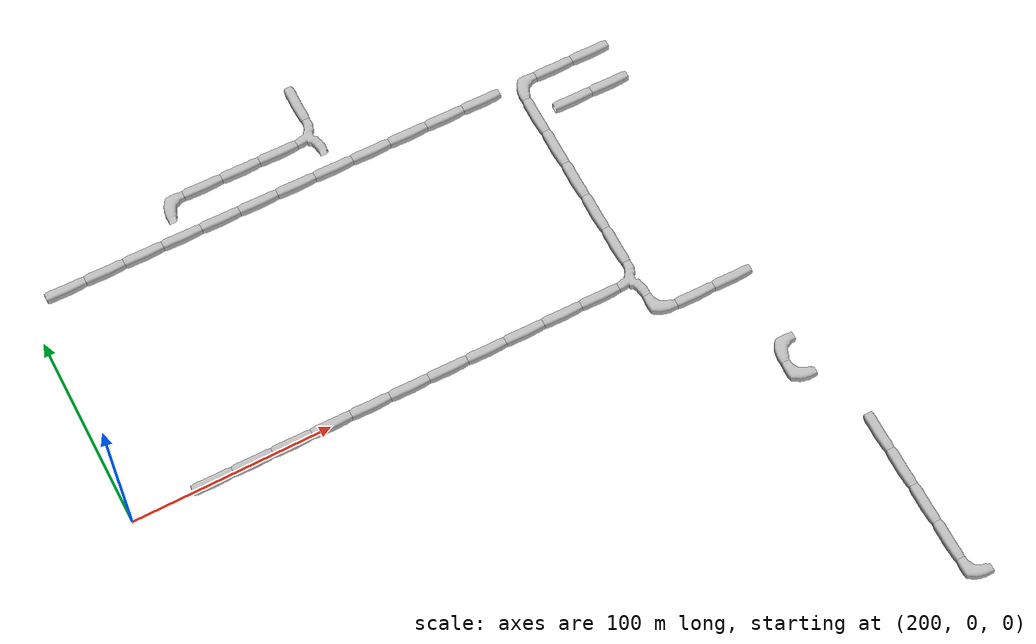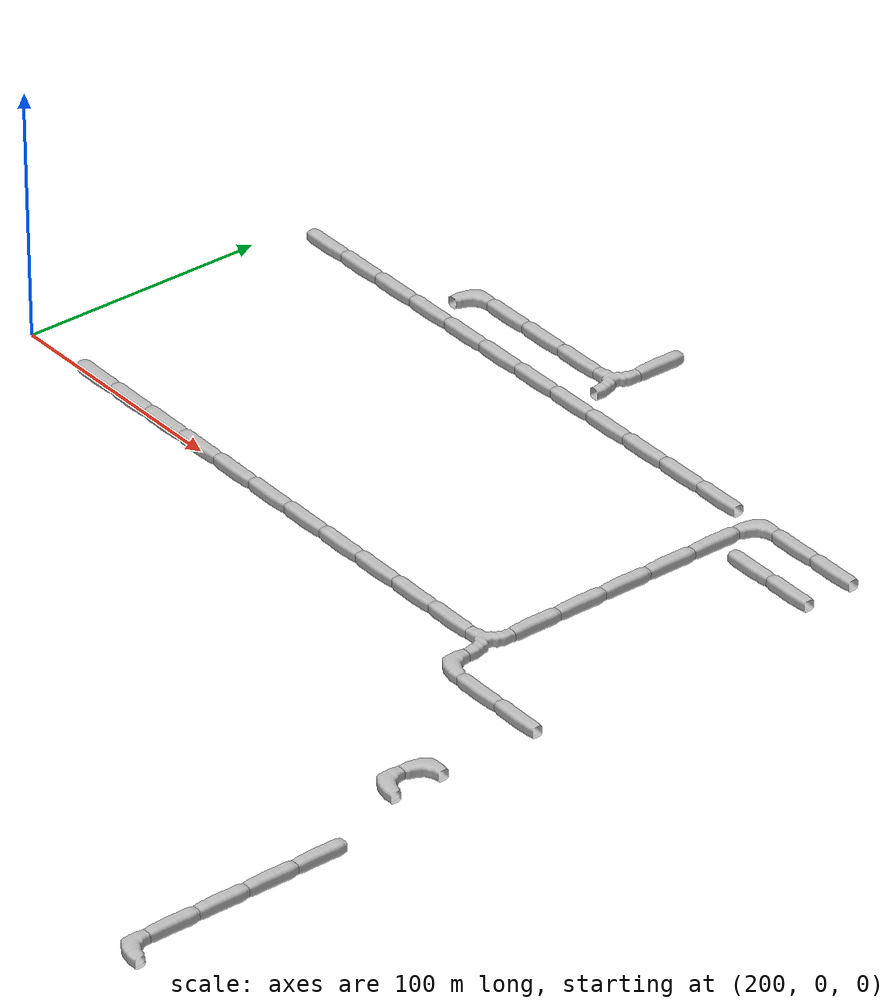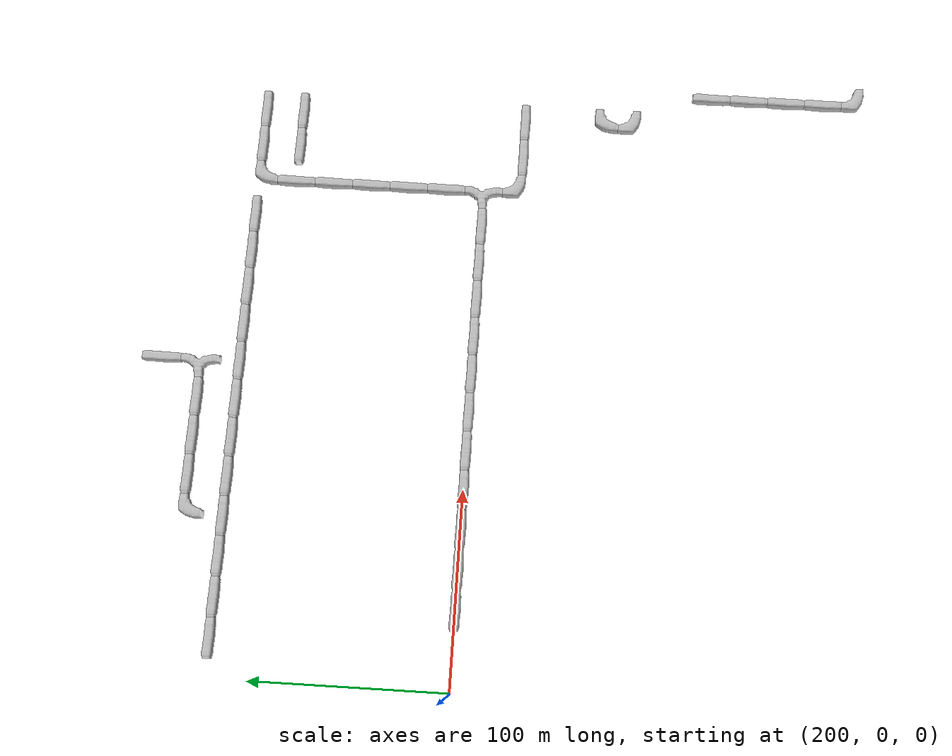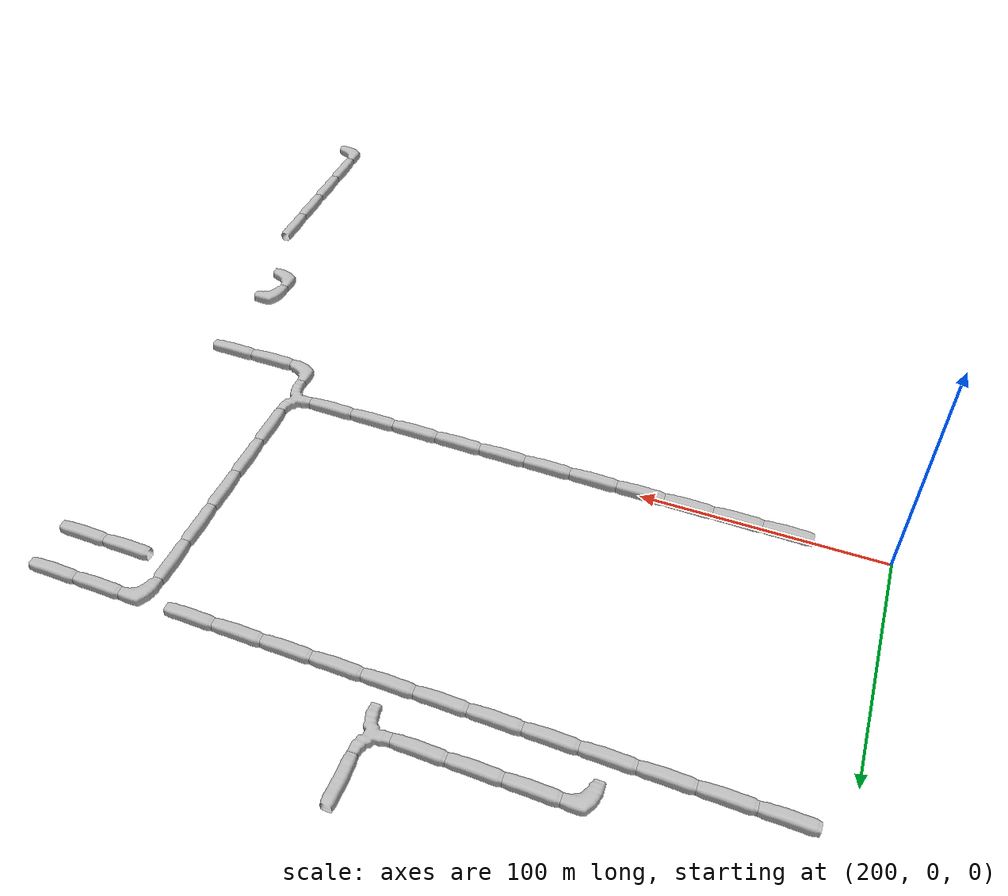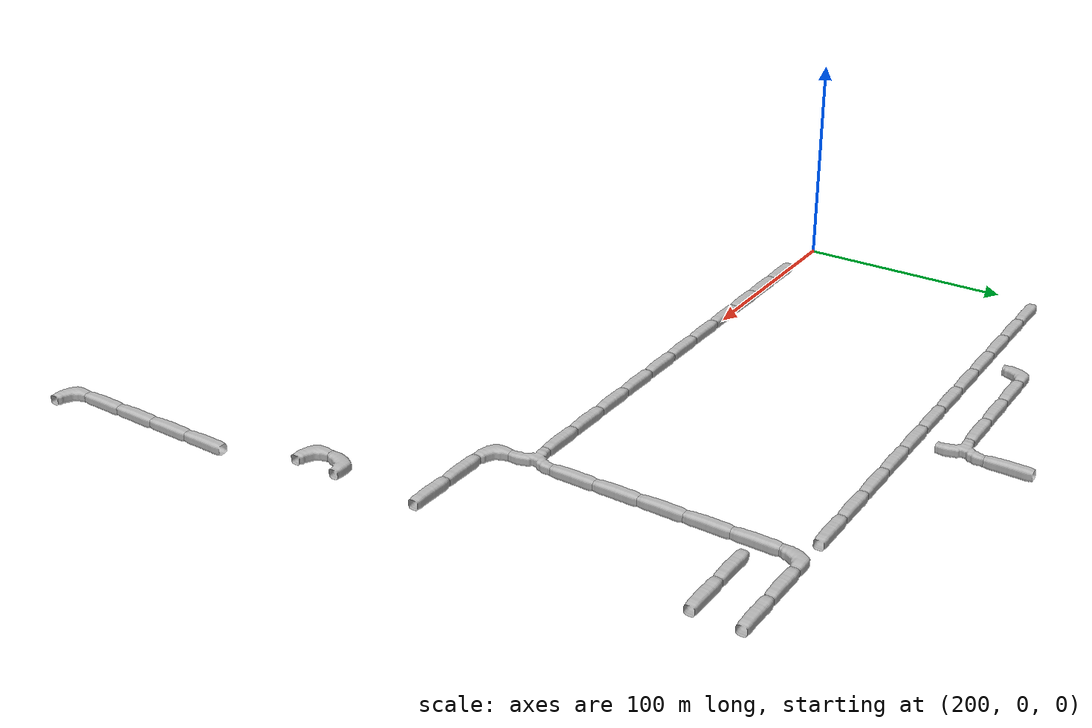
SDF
<sdf version="1.6">
 <world name="cave_16000">
  <include>
   <static>true</static>
   <name>cave_12_0</name>
   <pose>240 0 0 0 0 1.5707963267948966</pose>
   <uri>model://cave_straight_20m</uri>
  </include>
  <include>
   <static>true</static>
   <name>cave_13_0</name>
   <pose>260 0 0 0 0 1.5707963267948966</pose>
   <uri>model://cave_straight_20m</uri>
  </include>
  <include>
   <static>true</static>
   <name>cave_14_0</name>
   <pose>280 0 0 0 0 1.5707963267948966</pose>
   <uri>model://cave_straight_20m</uri>
  </include>
  <include>
   <static>true</static>
   <name>cave_15_0</name>
   <pose>300 0 0 0 0 1.5707963267948966</pose>
   <uri>model://cave_straight_20m</uri>
  </include>
  <include>
   <static>true</static>
   <name>cave_16_0</name>
   <pose>320 0 0 0 0 1.5707963267948966</pose>
   <uri>model://cave_straight_20m</uri>
  </include>
  <include>
   <static>true</static>
   <name>cave_17_0</name>
   <pose>340 0 0 0 0 1.5707963267948966</pose>
   <uri>model://cave_straight_20m</uri>
  </include>
  <include>
   <static>true</static>
   <name>cave_18_0</name>
   <pose>360 0 0 0 0 1.5707963267948966</pose>
   <uri>model://cave_straight_20m</uri>
  </include>
  <include>
   <static>true</static>
   <name>cave_19_0</name>
   <pose>380 0 0 0 0 1.5707963267948966</pose>
   <uri>model://cave_straight_20m</uri>
  </include>
  <include>
   <static>true</static>
   <name>cave_20_0</name>
   <pose>400 0 0 0 0 1.5707963267948966</pose>
   <uri>model://cave_straight_20m</uri>
  </include>
  <include>
   <static>true</static>
   <name>cave_21_0</name>
   <pose>420 0 0 0 0 1.5707963267948966</pose>
   <uri>model://cave_straight_20m</uri>
  </include>
  <include>
   <static>true</static>
   <name>cave_22_0</name>
   <pose>440 0 0 0 0 1.5707963267948966</pose>
   <uri>model://cave_straight_20m</uri>
  </include>
  <include>
   <static>true</static>
   <name>cave_23_0</name>
   <pose>460 0 0 0 0 1.5707963267948966</pose>
   <uri>model://cave_3way_20m</uri>
  </include>
  <include>
   <static>true</static>
   <name>cave_23_-1</name>
   <pose>460 -20 0 0 0 0.0</pose>
   <uri>model://cave_L_20m</uri>
  </include>
  <include>
   <static>true</static>
   <name>cave_24_-1</name>
   <pose>480 -20 0 0 0 1.5707963267948966</pose>
   <uri>model://cave_straight_20m</uri>
  </include>
  <include>
   <static>true</static>
   <name>cave_25_-1</name>
   <pose>500 -20 0 0 0 1.5707963267948966</pose>
   <uri>model://cave_straight_20m</uri>
  </include>
  <include>
   <static>true</static>
   <name>cave_26_-10</name>
   <pose>520 -200 0 0 0 0.0</pose>
   <uri>model://cave_L_20m</uri>
  </include>
  <include>
   <static>true</static>
   <name>cave_26_-9</name>
   <pose>520 -180 0 0 0 0.0</pose>
   <uri>model://cave_straight_20m</uri>
  </include>
  <include>
   <static>true</static>
   <name>cave_26_-8</name>
   <pose>520 -160 0 0 0 0.0</pose>
   <uri>model://cave_straight_20m</uri>
  </include>
  <include>
   <static>true</static>
   <name>cave_26_-7</name>
   <pose>520 -140 0 0 0 0.0</pose>
   <uri>model://cave_straight_20m</uri>
  </include>
  <include>
   <static>true</static>
   <name>cave_26_-6</name>
   <pose>520 -120 0 0 0 0.0</pose>
   <uri>model://cave_straight_20m</uri>
  </include>
  <include>
   <static>true</static>
   <name>cave_25_-4</name>
   <pose>500 -80 0 0 0 0.0</pose>
   <uri>model://cave_L_20m</uri>
  </include>
  <include>
   <static>true</static>
   <name>cave_25_-3</name>
   <pose>500 -60 0 0 0 -1.5707963267948966</pose>
   <uri>model://cave_L_20m</uri>
  </include>
  <include>
   <static>true</static>
   <name>cave_25_5</name>
   <pose>500 100 0 0 0 1.5707963267948966</pose>
   <uri>model://cave_straight_20m</uri>
  </include>
  <include>
   <static>true</static>
   <name>cave_24_5</name>
   <pose>480 100 0 0 0 1.5707963267948966</pose>
   <uri>model://cave_straight_20m</uri>
  </include>
  <include>
   <static>true</static>
   <name>cave_23_1</name>
   <pose>460 20 0 0 0 0.0</pose>
   <uri>model://cave_straight_20m</uri>
  </include>
  <include>
   <static>true</static>
   <name>cave_23_2</name>
   <pose>460 40 0 0 0 0.0</pose>
   <uri>model://cave_straight_20m</uri>
  </include>
  <include>
   <static>true</static>
   <name>cave_23_3</name>
   <pose>460 60 0 0 0 0.0</pose>
   <uri>model://cave_straight_20m</uri>
  </include>
  <include>
   <static>true</static>
   <name>cave_23_4</name>
   <pose>460 80 0 0 0 0.0</pose>
   <uri>model://cave_straight_20m</uri>
  </include>
  <include>
   <static>true</static>
   <name>cave_23_5</name>
   <pose>460 100 0 0 0 0.0</pose>
   <uri>model://cave_straight_20m</uri>
  </include>
  <include>
   <static>true</static>
   <name>cave_23_6</name>
   <pose>460 120 0 0 0 -1.5707963267948966</pose>
   <uri>model://cave_L_20m</uri>
  </include>
  <include>
   <static>true</static>
   <name>cave_24_6</name>
   <pose>480 120 0 0 0 1.5707963267948966</pose>
   <uri>model://cave_straight_20m</uri>
  </include>
  <include>
   <static>true</static>
   <name>cave_25_6</name>
   <pose>500 120 0 0 0 1.5707963267948966</pose>
   <uri>model://cave_straight_20m</uri>
  </include>
  <include>
   <static>true</static>
   <name>cave_18_8</name>
   <pose>360 160 0 0 0 0.0</pose>
   <uri>model://cave_straight_20m</uri>
  </include>
  <include>
   <static>true</static>
   <name>cave_18_7</name>
   <pose>360 140 0 0 0 1.5707963267948966</pose>
   <uri>model://cave_3way_20m</uri>
  </include>
  <include>
   <static>true</static>
   <name>cave_17_7</name>
   <pose>340 140 0 0 0 1.5707963267948966</pose>
   <uri>model://cave_straight_20m</uri>
  </include>
  <include>
   <static>true</static>
   <name>cave_16_7</name>
   <pose>320 140 0 0 0 1.5707963267948966</pose>
   <uri>model://cave_straight_20m</uri>
  </include>
  <include>
   <static>true</static>
   <name>cave_15_7</name>
   <pose>300 140 0 0 0 1.5707963267948966</pose>
   <uri>model://cave_straight_20m</uri>
  </include>
  <include>
   <static>true</static>
   <name>cave_14_7</name>
   <pose>280 140 0 0 0 -1.5707963267948966</pose>
   <uri>model://cave_L_20m</uri>
  </include>
  <include>
   <static>true</static>
   <name>cave_11_6</name>
   <pose>220 120 0 0 0 1.5707963267948966</pose>
   <uri>model://cave_straight_20m</uri>
  </include>
  <include>
   <static>true</static>
   <name>cave_12_6</name>
   <pose>240 120 0 0 0 1.5707963267948966</pose>
   <uri>model://cave_straight_20m</uri>
  </include>
  <include>
   <static>true</static>
   <name>cave_13_6</name>
   <pose>260 120 0 0 0 1.5707963267948966</pose>
   <uri>model://cave_straight_20m</uri>
  </include>
  <include>
   <static>true</static>
   <name>cave_14_6</name>
   <pose>280 120 0 0 0 1.5707963267948966</pose>
   <uri>model://cave_straight_20m</uri>
  </include>
  <include>
   <static>true</static>
   <name>cave_15_6</name>
   <pose>300 120 0 0 0 1.5707963267948966</pose>
   <uri>model://cave_straight_20m</uri>
  </include>
  <include>
   <static>true</static>
   <name>cave_16_6</name>
   <pose>320 120 0 0 0 1.5707963267948966</pose>
   <uri>model://cave_straight_20m</uri>
  </include>
  <include>
   <static>true</static>
   <name>cave_17_6</name>
   <pose>340 120 0 0 0 1.5707963267948966</pose>
   <uri>model://cave_straight_20m</uri>
  </include>
  <include>
   <static>true</static>
   <name>cave_18_6</name>
   <pose>360 120 0 0 0 1.5707963267948966</pose>
   <uri>model://cave_straight_20m</uri>
  </include>
  <include>
   <static>true</static>
   <name>cave_19_6</name>
   <pose>380 120 0 0 0 1.5707963267948966</pose>
   <uri>model://cave_straight_20m</uri>
  </include>
  <include>
   <static>true</static>
   <name>cave_20_6</name>
   <pose>400 120 0 0 0 1.5707963267948966</pose>
   <uri>model://cave_straight_20m</uri>
  </include>
  <include>
   <static>true</static>
   <name>cave_21_6</name>
   <pose>420 120 0 0 0 1.5707963267948966</pose>
   <uri>model://cave_straight_20m</uri>
  </include>
  <include>
   <static>true</static>
   <name>cave_22_6</name>
   <pose>440 120 0 0 0 1.5707963267948966</pose>
   <uri>model://cave_straight_20m</uri>
  </include>
 </world>
</sdf>
